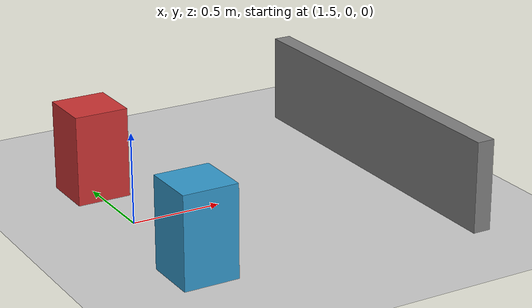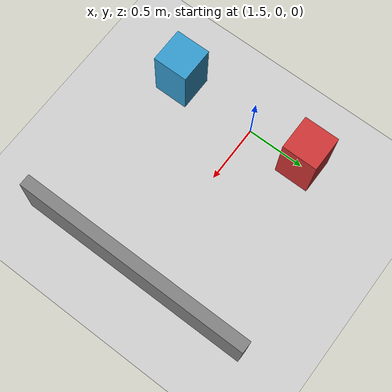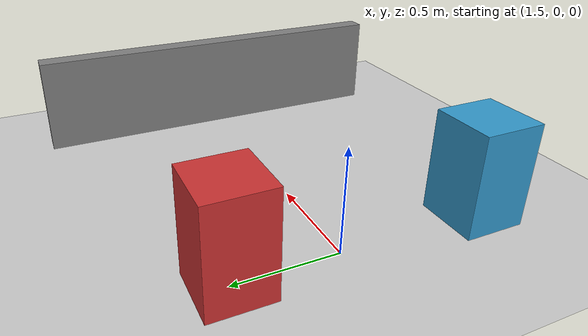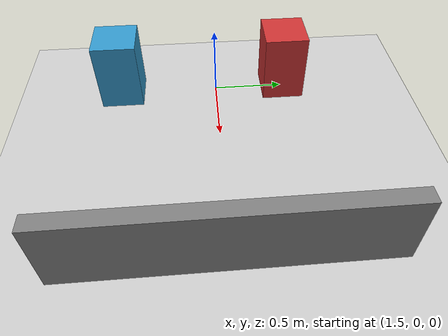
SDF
<?xml version="1.0" ?>
<sdf version="1.6">
  <world name="basic_world">

    <!-- ================= Physics ================= -->
    <physics type="ode">
      <max_step_size>0.001</max_step_size>
      <real_time_factor>1.0</real_time_factor>
      <real_time_update_rate>1000</real_time_update_rate>
    </physics>

    <!-- ================= Sun (default lighting) ================= -->
    <include>
      <uri>model://sun</uri>
    </include>

    <!-- ================= Ground plane ================= -->
    <include>
      <uri>model://ground_plane</uri>
    </include>

    <!-- ================= simple obstacles ================= -->
    <model name="box_obstacle_1">
      <static>true</static>
      <pose>1.5 0.5 0.25 0 0 0</pose>
      <link name="link">
        <collision name="collision">
          <geometry>
            <box><size>0.3 0.3 0.5</size></box>
          </geometry>
        </collision>
        <visual name="visual">
          <geometry>
            <box><size>0.3 0.3 0.5</size></box>
          </geometry>
          <material>
            <ambient>0.8 0.2 0.2 1</ambient>
            <diffuse>0.8 0.2 0.2 1</diffuse>
          </material>
        </visual>
      </link>
    </model>

    <model name="box_obstacle_2">
      <static>true</static>
      <pose>1.5 -0.7 0.25 0 0 0</pose>
      <link name="link">
        <collision name="collision">
          <geometry>
            <box><size>0.3 0.3 0.5</size></box>
          </geometry>
        </collision>
        <visual name="visual">
          <geometry>
            <box><size>0.3 0.3 0.5</size></box>
          </geometry>
          <material>
            <ambient>0.2 0.6 0.8 1</ambient>
            <diffuse>0.2 0.6 0.8 1</diffuse>
          </material>
        </visual>
      </link>
    </model>

    <model name="wall_1">
      <static>true</static>
      <pose>3.0 0 0.25 0 0 0</pose>
      <link name="link">
        <collision name="collision">
          <geometry>
            <box><size>0.1 2.0 0.5</size></box>
          </geometry>
        </collision>
        <visual name="visual">
          <geometry>
            <box><size>0.1 2.0 0.5</size></box>
          </geometry>
          <material>
            <ambient>0.5 0.5 0.5 1</ambient>
            <diffuse>0.5 0.5 0.5 1</diffuse>
          </material>
        </visual>
      </link>
    </model>

  </world>
</sdf>
